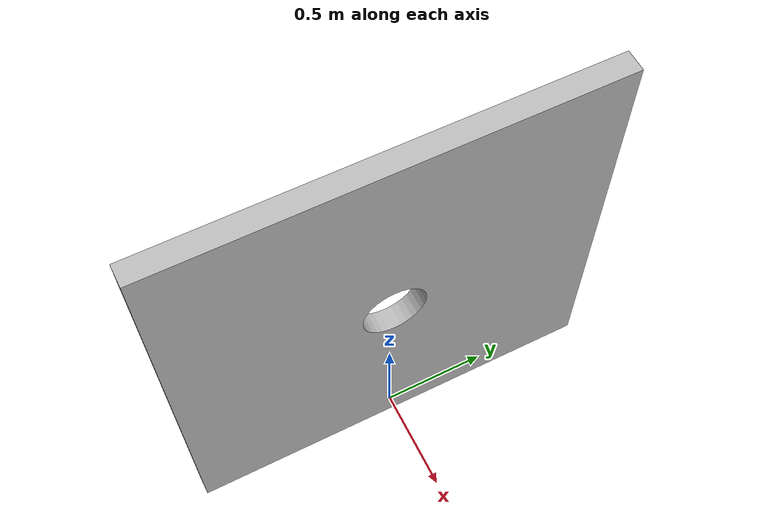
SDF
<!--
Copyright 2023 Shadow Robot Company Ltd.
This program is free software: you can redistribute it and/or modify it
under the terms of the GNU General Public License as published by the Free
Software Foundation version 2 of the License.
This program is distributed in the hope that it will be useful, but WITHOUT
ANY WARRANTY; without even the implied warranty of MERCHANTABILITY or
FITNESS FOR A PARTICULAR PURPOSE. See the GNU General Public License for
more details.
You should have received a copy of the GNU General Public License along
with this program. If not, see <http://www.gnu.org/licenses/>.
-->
<?xml version="1.0" ?>

<sdf version="1.4">
  <model name="wall_with_hole">
    <static>true</static>
    <link name="link">
      <inertial>
        <mass>20</mass>
      </inertial>
      <collision name="collision">
        <pose>0.0 0.0 0.0 0 0.0 0.0</pose>
        <geometry>
          <mesh>
            <uri>model://wall_with_hole/meshes/wall_with_hole.stl</uri>
          </mesh>
        </geometry>
      </collision>
      <visual name="visual">
        <pose>0.0 0.0 0.0 0 0.0 0.0</pose>
        <geometry>
          <mesh>
            <uri>model://wall_with_hole/meshes/wall_with_hole.stl</uri>
          </mesh>
        </geometry>
      </visual>
    </link>
  </model>
</sdf>
